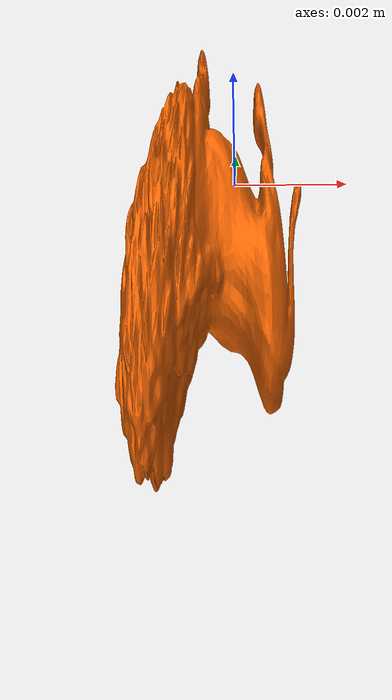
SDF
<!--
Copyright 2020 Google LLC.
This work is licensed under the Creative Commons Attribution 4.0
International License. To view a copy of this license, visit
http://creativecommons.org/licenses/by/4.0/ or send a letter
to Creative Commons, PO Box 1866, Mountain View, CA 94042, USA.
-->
<?xml version="1.0"?>
<sdf version="1.8">
  <model name="Lion_Action_Figure">
    <static>true</static>
    <self_collide>false</self_collide>
    <link name="link_0">
      <visual name="visual">
        <geometry>
          <mesh>
            <!-- Use the green bamboo mesh -->
            <uri>meshes/Lion.dae</uri>
            <scale>0.02 0.02 0.02</scale>
          </mesh>
        </geometry>
        <cast_shadows>false</cast_shadows>
      </visual>
      <collision name="collision_0">
        <geometry>
          <mesh>
            <uri>meshes/model.dae</uri>
          </mesh>
        </geometry>
      </collision>

    </link>
  </model>
</sdf>
